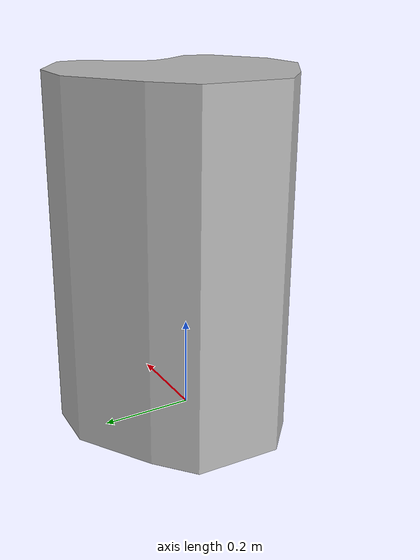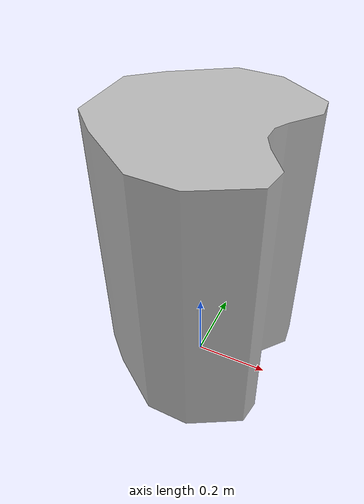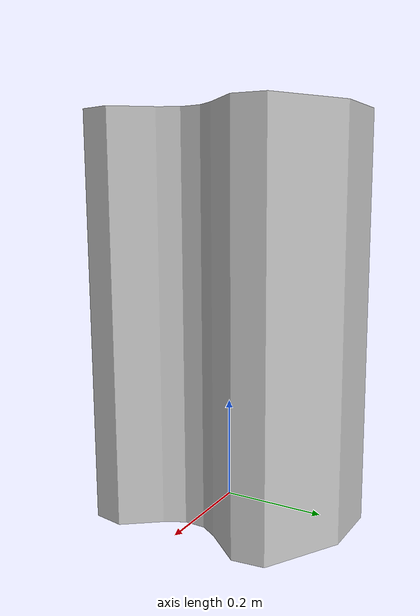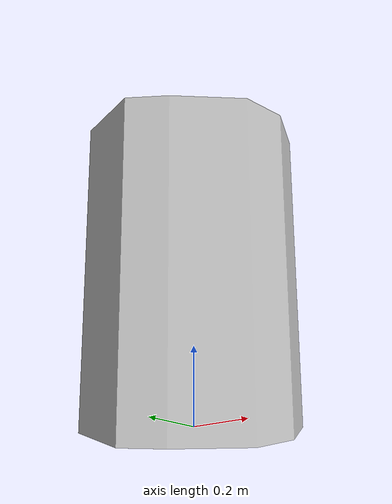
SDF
<?xml version="1.0" encoding="UTF-8"?>
<sdf version="1.5">
   <model name="iris_cyan">
      <static>false</static>
      <link name="chassis">
         <pose>0 0 0 0 0 0</pose>
         <inertial>
            <mass>3900</mass>
            <pose>0 0 0 0 0 0</pose>
            <inertia>
               <ixx>650</ixx>
               <ixy>0</ixy>
               <ixz>0</ixz>
               <iyy>650</iyy>
               <iyz>0</iyz>
               <izz>1625</izz>
            </inertia>
         </inertial>

         <collision name="collision">
            <pose>0 0 0 1.57 0 1.54</pose>
            <geometry>
               <mesh>
                    <scale>0.001 0.001 0.001</scale>
                  <uri>file://iris_cyan/meshes/collision.dae</uri>
               </mesh>
            </geometry>
            <surface>
               <bounce>
                  <restitution_coefficient>0</restitution_coefficient>
               </bounce>
               <friction>
                  <ode>
                     <mu>0.1</mu>
                     <mu2>0.1</mu2>
                  </ode>
               </friction>
               <contact>
                  <ode>
                    <max_vel>1</max_vel>
                    <min_depth>0.01</min_depth>
                 </ode>
              </contact>
            </surface>
         </collision>

         <visual name="visual">
            <pose>0 0 0.21 0 0 3.14</pose>
            <geometry>
               <mesh>
                  <scale>0.004 0.004 0.004</scale>
                 <uri>file://iris_cyan/meshes/cyanNum2.dae</uri>
               </mesh>
            </geometry>
         </visual>

         <velocity_decay>
            <linear>0</linear>
            <angular>0</angular>
         </velocity_decay>

         <self_collide>0</self_collide>
         <gravity>1</gravity>

         <plugin name="p3d_base_controller" filename="libgazebo_ros_p3d.so">
            <alwaysOn>true</alwaysOn>
            <robotNamespace></robotNamespace>
            <bodyName>oddometry</bodyName>
            <topicName>oddo</topicName>
         </plugin>

         <!-- Add a ray sensor, and give it a name -->
         <sensor type="ray" name="sensor">
            <pose>0 0 0.235 0 0 0</pose>

            <!-- Enable visualization to see the rays in the GUI -->
            <visualize>false</visualize>

            <!-- Set the update rate of the sensor -->
            <update_rate>50</update_rate>

            <ray>
               <!-- The scan element contains the horizontal and vertical beams.
                  We are leaving out the vertical beams for this tutorial. -->
               <scan>

                  <!-- The horizontal beams -->
                  <horizontal>
                     <!-- The velodyne has 32 beams(samples) -->
                     <samples>145</samples>

                     <resolution>1</resolution>

                     <!-- Minimum angle in radians -->
                     <min_angle>-1.57079632679</min_angle>

                     <!-- Maximum angle in radians -->
                     <max_angle>4.71238898038</max_angle>
                  </horizontal>
               </scan>

               <!-- Range defines characteristics of an individual beam -->
               <range>

                  <!-- Minimum distance of the beam -->
                  <min>0.35</min>

                  <!-- Maximum distance of the beam -->
                  <max>3.5</max>

                  <!-- Linear resolution of the beam -->
                  <resolution>0</resolution>
               </range>
            </ray>
            <plugin name="laser_controller" filename="libgazebo_ros_laser.so">
               <!-- Dikosongi agar nama rostopic mengikuti namespace -->
               <robotNamespace></robotNamespace>
               <topicName>radial_scan</topicName>
               <frameName>lidar</frameName>
            </plugin>
         </sensor>

         <sensor name="camera" type="wideanglecamera">
            <!-- POSE HASIL BISEKSI JADI WAJAR KALO ANEH, MUNGKIN KARENA MODEL NYA GA SEMPURNA-->
            <pose>-0.0085 0 1.055 0 89.55 0</pose>

            <camera>
               <horizontal_fov>6.283</horizontal_fov>
               <image>
                  <width>360</width>
                  <height>640</height>
               </image>
               <clip>
                  <near>0.01</near>
                  <far>6</far>
               </clip>
               <!-- A new section named `lens`. -->
               <lens>
                  <!-- type element is mandatory -->
                  <type>custom</type>
                  <!-- manually defined mapping function r = c1*f*fun(theta/c2 + c3) -->
                  <!-- More information here: https://en.wikipedia.org/wiki/Fisheye_lens#Mapping_function -->
                  <custom_function>
                     <!-- Best 4.8 BUT dicilikne for ngepasne 360x640 -->
                     <c1>10</c1>
                     <!-- linear scaling -->
                     <c2>30</c2>
                     <!-- angle scaling -->
                     <f>3</f>
                     <!-- one more scaling parameter -->
                     <fun>tan</fun>
                     <!-- one of sin,tan,id -->
                  </custom_function>
                  <!-- if it is set to `true` your horizontal FOV will ramain as defined -->
                  <!-- othervise it depends on lens type and custom function, if there is one -->
                  <scale_to_hfov>false</scale_to_hfov>
                  <!-- clip everything that is outside of this angle -->
                  <cutoff_angle>1.52</cutoff_angle>

                  <!-- resolution of the cubemap texture, the highter it is - the sharper is your image -->
                  <env_texture_size>300</env_texture_size>
               </lens>

               <always_on>1</always_on>
               <update_rate>30</update_rate>
            </camera>

            <plugin name="camera_controller" filename="libgazebo_ros_camera.so">
               <robotNamespace></robotNamespace>
               <cameraName>omni_cam</cameraName>
               <imageTopicName>omni_image_raw</imageTopicName>
               <cameraInfoTopicName>omni_camera_info</cameraInfoTopicName>
               <frameName>omni_camera_link</frameName>
               <hackBaseline>0.07</hackBaseline>
            </plugin>
         </sensor>
      </link>

      <plugin name="robot_gazebo" filename="librobot_gazebo_second.so"/>
   </model>
</sdf>
